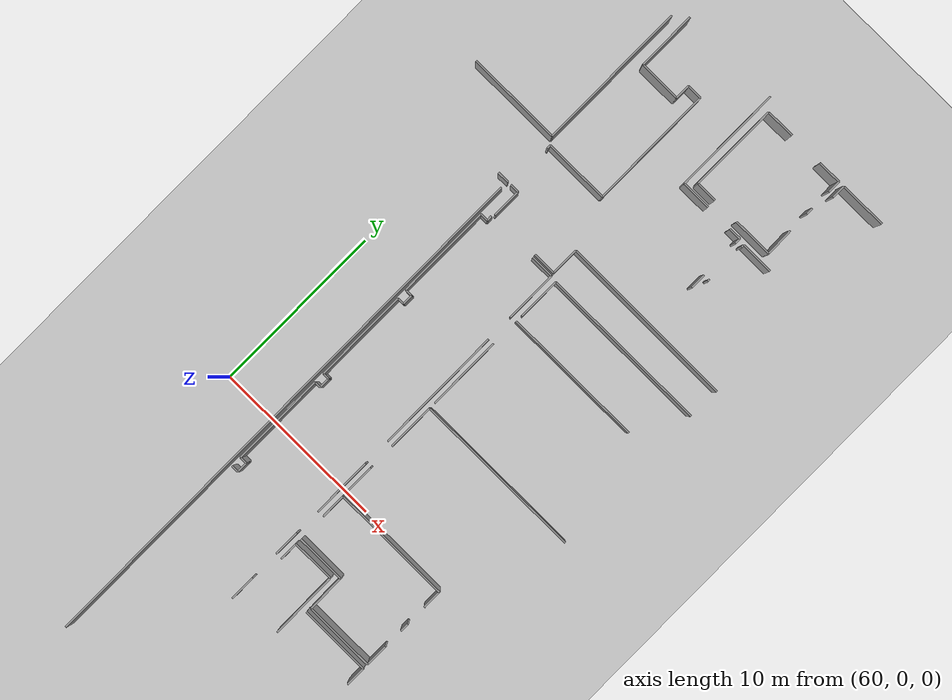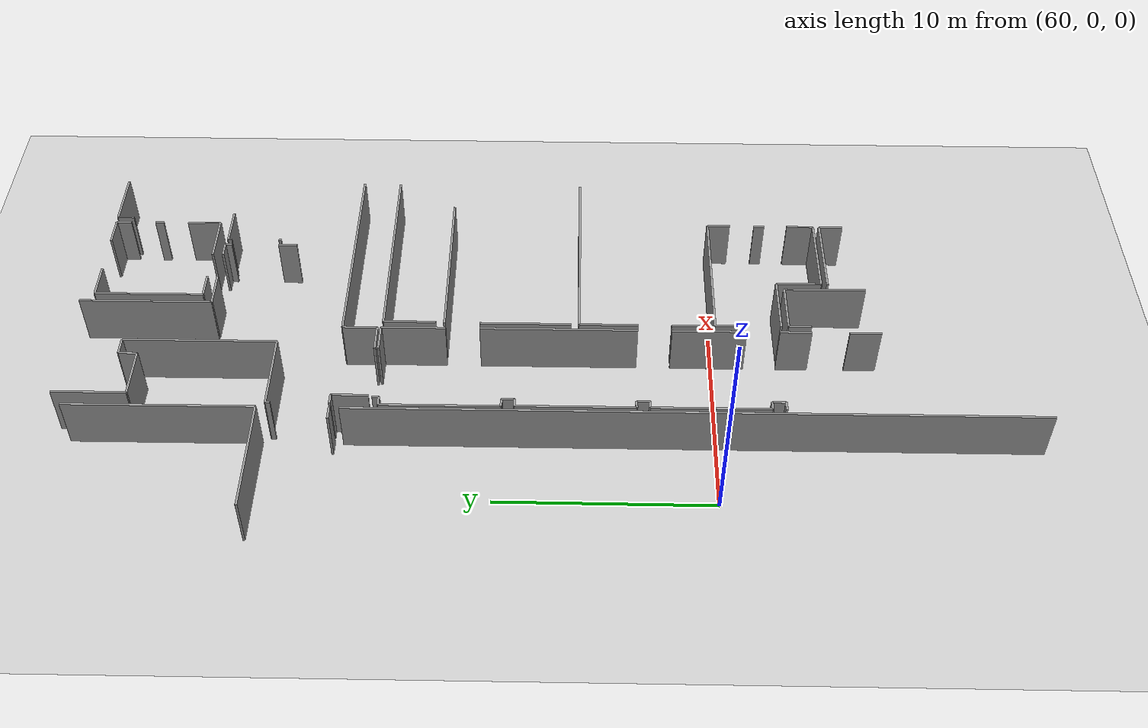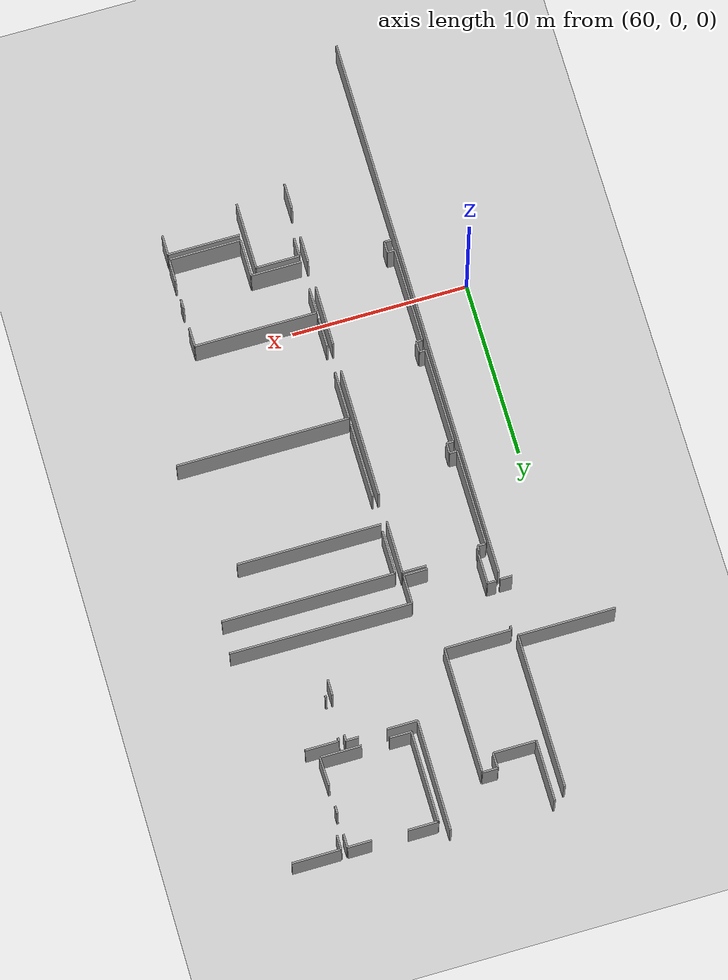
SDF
<sdf version="1.6">
 <world name="default">
  <model name="ground_plane">
   <static>1</static>
   <link name="link">
    <collision name="collision">
     <geometry><plane><normal>0 0 1</normal><size>100 100</size></plane></geometry>
     <surface><friction><ode><mu>100</mu><mu2>50</mu2></ode></friction></surface>
    </collision>
    <visual name="visual">
     <cast_shadows>0</cast_shadows>
     <geometry><plane><normal>0 0 1</normal><size>100 100</size></plane></geometry>
     <material>
      <script><uri>file://media/materials/scripts/gazebo.material</uri><name>Gazebo/Grey</name></script>
     </material>
    </visual>
   </link>
  </model>
  <model name="50010535_PLAN2">
   <static>1</static>
   <link name="Wall_178">
    <collision name="Wall_178_Collision">
     <geometry><box><size>0.682833236978 0.1 2.5</size></box></geometry>
     <pose>0.341416618489 0 1.25 0 0 0</pose>
    </collision>
    <visual name="Wall_178_Visual">
     <pose>0.341416618489 0 1.25 0 0 0</pose>
     <geometry><box><size>0.682833236978 0.1 2.5</size></box></geometry>
     <material>
      <script><uri>file://media/materials/scripts/gazebo.material</uri><name>Gazebo/Grey</name></script>
      <ambient>1 1 1 1</ambient>
     </material>
    </visual>
    <pose>165.866241431 -12.5499259862 0 0 0 3.14159265359</pose>
   </link>
   <link name="Wall_279">
    <collision name="Wall_279_Collision">
     <geometry><box><size>5.47816750634 0.1 2.5</size></box></geometry>
     <pose>2.73908375317 0 1.25 0 0 0</pose>
    </collision>
    <visual name="Wall_279_Visual">
     <pose>2.73908375317 0 1.25 0 0 0</pose>
     <geometry><box><size>5.47816750634 0.1 2.5</size></box></geometry>
     <material>
      <script><uri>file://media/materials/scripts/gazebo.material</uri><name>Gazebo/Grey</name></script>
      <ambient>1 1 1 1</ambient>
     </material>
    </visual>
    <pose>165.822531972 -9.28721815976 0 0 0 3.14159265359</pose>
   </link>
   <link name="Wall_288">
    <collision name="Wall_288_Collision">
     <geometry><box><size>8.69490667362 0.1 2.5</size></box></geometry>
     <pose>4.34745333681 0 1.25 0 0 0</pose>
    </collision>
    <visual name="Wall_288_Visual">
     <pose>4.34745333681 0 1.25 0 0 0</pose>
     <geometry><box><size>8.69490667362 0.1 2.5</size></box></geometry>
     <material>
      <script><uri>file://media/materials/scripts/gazebo.material</uri><name>Gazebo/Grey</name></script>
      <ambient>1 1 1 1</ambient>
     </material>
    </visual>
    <pose>165.815924728 -0.592313996557 0 0 0 -1.57003642853</pose>
   </link>
   <link name="Wall_359">
    <collision name="Wall_359_Collision">
     <geometry><box><size>31.5805924919 0.1 2.5</size></box></geometry>
     <pose>15.7902962459 0 1.25 0 0 0</pose>
    </collision>
    <visual name="Wall_359_Visual">
     <pose>15.7902962459 0 1.25 0 0 0</pose>
     <geometry><box><size>31.5805924919 0.1 2.5</size></box></geometry>
     <material>
      <script><uri>file://media/materials/scripts/gazebo.material</uri><name>Gazebo/Grey</name></script>
      <ambient>1 1 1 1</ambient>
     </material>
    </visual>
    <pose>165.815924728 -12.9755849634 0 0 0 -1.57079632679</pose>
   </link>
   <link name="Wall_364">
    <collision name="Wall_364_Collision">
     <geometry><box><size>0.904938279448 0.1 2.5</size></box></geometry>
     <pose>0.452469139724 0 1.25 0 0 0</pose>
    </collision>
    <visual name="Wall_364_Visual">
     <pose>0.452469139724 0 1.25 0 0 0</pose>
     <geometry><box><size>0.904938279448 0.1 2.5</size></box></geometry>
     <material>
      <script><uri>file://media/materials/scripts/gazebo.material</uri><name>Gazebo/Grey</name></script>
      <ambient>1 1 1 1</ambient>
     </material>
    </visual>
    <pose>176.328557906 -9.77793307624 0 0 0 1.57079632679</pose>
   </link>
   <link name="Wall_365">
    <collision name="Wall_365_Collision">
     <geometry><box><size>0.32959981703 0.1 2.5</size></box></geometry>
     <pose>0.164799908515 0 1.25 0 0 0</pose>
    </collision>
    <visual name="Wall_365_Visual">
     <pose>0.164799908515 0 1.25 0 0 0</pose>
     <geometry><box><size>0.32959981703 0.1 2.5</size></box></geometry>
     <material>
      <script><uri>file://media/materials/scripts/gazebo.material</uri><name>Gazebo/Grey</name></script>
      <ambient>1 1 1 1</ambient>
     </material>
    </visual>
    <pose>176.328557906 -6.5918946907 0 0 0 1.57079632679</pose>
   </link>
   <link name="Wall_366">
    <collision name="Wall_366_Collision">
     <geometry><box><size>0.707483338945 0.1 2.5</size></box></geometry>
     <pose>0.353741669473 0 1.25 0 0 0</pose>
    </collision>
    <visual name="Wall_366_Visual">
     <pose>0.353741669473 0 1.25 0 0 0</pose>
     <geometry><box><size>0.707483338945 0.1 2.5</size></box></geometry>
     <material>
      <script><uri>file://media/materials/scripts/gazebo.material</uri><name>Gazebo/Grey</name></script>
      <ambient>1 1 1 1</ambient>
     </material>
    </visual>
    <pose>176.328557906 -6.26229487367 0 0 0 3.14159265359</pose>
   </link>
   <link name="Wall_367">
    <collision name="Wall_367_Collision">
     <geometry><box><size>1.71457977294 0.1 2.5</size></box></geometry>
     <pose>0.85728988647 0 1.25 0 0 0</pose>
    </collision>
    <visual name="Wall_367_Visual">
     <pose>0.85728988647 0 1.25 0 0 0</pose>
     <geometry><box><size>1.71457977294 0.1 2.5</size></box></geometry>
     <material>
      <script><uri>file://media/materials/scripts/gazebo.material</uri><name>Gazebo/Grey</name></script>
      <ambient>1 1 1 1</ambient>
     </material>
    </visual>
    <pose>174.046517538 -6.26229487367 0 0 0 3.14159265359</pose>
   </link>
   <link name="Wall_368">
    <collision name="Wall_368_Collision">
     <geometry><box><size>6.26160873681 0.1 2.5</size></box></geometry>
     <pose>3.1308043684 0 1.25 0 0 0</pose>
    </collision>
    <visual name="Wall_368_Visual">
     <pose>3.1308043684 0 1.25 0 0 0</pose>
     <geometry><box><size>6.26160873681 0.1 2.5</size></box></geometry>
     <material>
      <script><uri>file://media/materials/scripts/gazebo.material</uri><name>Gazebo/Grey</name></script>
      <ambient>1 1 1 1</ambient>
     </material>
    </visual>
    <pose>172.331937765 -6.26229487367 0 0 0 1.57079632679</pose>
   </link>
   <link name="Wall_369">
    <collision name="Wall_369_Collision">
     <geometry><box><size>3.4144711346 0.1 2.5</size></box></geometry>
     <pose>1.7072355673 0 1.25 0 0 0</pose>
    </collision>
    <visual name="Wall_369_Visual">
     <pose>1.7072355673 0 1.25 0 0 0</pose>
     <geometry><box><size>3.4144711346 0.1 2.5</size></box></geometry>
     <material>
      <script><uri>file://media/materials/scripts/gazebo.material</uri><name>Gazebo/Grey</name></script>
      <ambient>1 1 1 1</ambient>
     </material>
    </visual>
    <pose>166.549074668 -0.000686136858892 0 0 0 -1.57079632679</pose>
   </link>
   <link name="Wall_370">
    <collision name="Wall_370_Collision">
     <geometry><box><size>2.41189812138 0.1 2.5</size></box></geometry>
     <pose>1.20594906069 0 1.25 0 0 0</pose>
    </collision>
    <visual name="Wall_370_Visual">
     <pose>1.20594906069 0 1.25 0 0 0</pose>
     <geometry><box><size>2.41189812138 0.1 2.5</size></box></geometry>
     <material>
      <script><uri>file://media/materials/scripts/gazebo.material</uri><name>Gazebo/Grey</name></script>
      <ambient>1 1 1 1</ambient>
     </material>
    </visual>
    <pose>166.549074668 -3.41515727146 0 0 0 0.0</pose>
   </link>
   <link name="Wall_371">
    <collision name="Wall_371_Collision">
     <geometry><box><size>0.857264473994 0.1 2.5</size></box></geometry>
     <pose>0.428632236997 0 1.25 0 0 0</pose>
    </collision>
    <visual name="Wall_371_Visual">
     <pose>0.428632236997 0 1.25 0 0 0</pose>
     <geometry><box><size>0.857264473994 0.1 2.5</size></box></geometry>
     <material>
      <script><uri>file://media/materials/scripts/gazebo.material</uri><name>Gazebo/Grey</name></script>
      <ambient>1 1 1 1</ambient>
     </material>
    </visual>
    <pose>168.96097279 -3.41515727146 0 0 0 1.57079632679</pose>
   </link>
   <link name="Wall_372">
    <collision name="Wall_372_Collision">
     <geometry><box><size>0.857416948851 0.1 2.5</size></box></geometry>
     <pose>0.428708474426 0 1.25 0 0 0</pose>
    </collision>
    <visual name="Wall_372_Visual">
     <pose>0.428708474426 0 1.25 0 0 0</pose>
     <geometry><box><size>0.857416948851 0.1 2.5</size></box></geometry>
     <material>
      <script><uri>file://media/materials/scripts/gazebo.material</uri><name>Gazebo/Grey</name></script>
      <ambient>1 1 1 1</ambient>
     </material>
    </visual>
    <pose>168.96097279 -2.55789279747 0 0 0 0.0</pose>
   </link>
   <link name="Wall_373">
    <collision name="Wall_373_Collision">
     <geometry><box><size>7.13033423759 0.1 2.5</size></box></geometry>
     <pose>3.5651671188 0 1.25 0 0 0</pose>
    </collision>
    <visual name="Wall_373_Visual">
     <pose>3.5651671188 0 1.25 0 0 0</pose>
     <geometry><box><size>7.13033423759 0.1 2.5</size></box></geometry>
     <material>
      <script><uri>file://media/materials/scripts/gazebo.material</uri><name>Gazebo/Grey</name></script>
      <ambient>1 1 1 1</ambient>
     </material>
    </visual>
    <pose>169.818389738 -2.55789279747 0 0 0 -1.57079632679</pose>
   </link>
   <link name="Wall_374">
    <collision name="Wall_374_Collision">
     <geometry><box><size>3.74452837621 0.1 2.5</size></box></geometry>
     <pose>1.8722641881 0 1.25 0 0 0</pose>
    </collision>
    <visual name="Wall_374_Visual">
     <pose>1.8722641881 0 1.25 0 0 0</pose>
     <geometry><box><size>3.74452837621 0.1 2.5</size></box></geometry>
     <material>
      <script><uri>file://media/materials/scripts/gazebo.material</uri><name>Gazebo/Grey</name></script>
      <ambient>1 1 1 1</ambient>
     </material>
    </visual>
    <pose>169.818389738 -9.68822703506 0 0 0 3.14159265359</pose>
   </link>
   <link name="Wall_375">
    <collision name="Wall_375_Collision">
     <geometry><box><size>0.210669428156 0.1 2.5</size></box></geometry>
     <pose>0.105334714078 0 1.25 0 0 0</pose>
    </collision>
    <visual name="Wall_375_Visual">
     <pose>0.105334714078 0 1.25 0 0 0</pose>
     <geometry><box><size>0.210669428156 0.1 2.5</size></box></geometry>
     <material>
      <script><uri>file://media/materials/scripts/gazebo.material</uri><name>Gazebo/Grey</name></script>
      <ambient>1 1 1 1</ambient>
     </material>
    </visual>
    <pose>166.073861362 -9.68822703506 0 0 0 -1.57079632679</pose>
   </link>
   <link name="Wall_376">
    <collision name="Wall_376_Collision">
     <geometry><box><size>0.501388156515 0.1 2.5</size></box></geometry>
     <pose>0.250694078258 0 1.25 0 0 0</pose>
    </collision>
    <visual name="Wall_376_Visual">
     <pose>0.250694078258 0 1.25 0 0 0</pose>
     <geometry><box><size>0.501388156515 0.1 2.5</size></box></geometry>
     <material>
      <script><uri>file://media/materials/scripts/gazebo.material</uri><name>Gazebo/Grey</name></script>
      <ambient>1 1 1 1</ambient>
     </material>
    </visual>
    <pose>166.073861362 -12.5341702509 0 0 0 0.0</pose>
   </link>
   <link name="Wall_377">
    <collision name="Wall_377_Collision">
     <geometry><box><size>1.68154355381 0.1 2.5</size></box></geometry>
     <pose>0.840771776904 0 1.25 0 0 0</pose>
    </collision>
    <visual name="Wall_377_Visual">
     <pose>0.840771776904 0 1.25 0 0 0</pose>
     <geometry><box><size>1.68154355381 0.1 2.5</size></box></geometry>
     <material>
      <script><uri>file://media/materials/scripts/gazebo.material</uri><name>Gazebo/Grey</name></script>
      <ambient>1 1 1 1</ambient>
     </material>
    </visual>
    <pose>166.575249519 -12.5341702509 0 0 0 -1.57079632679</pose>
   </link>
   <link name="Wall_378">
    <collision name="Wall_378_Collision">
     <geometry><box><size>1.33669625102 0.1 2.5</size></box></geometry>
     <pose>0.668348125512 0 1.25 0 0 0</pose>
    </collision>
    <visual name="Wall_378_Visual">
     <pose>0.668348125512 0 1.25 0 0 0</pose>
     <geometry><box><size>1.33669625102 0.1 2.5</size></box></geometry>
     <material>
      <script><uri>file://media/materials/scripts/gazebo.material</uri><name>Gazebo/Grey</name></script>
      <ambient>1 1 1 1</ambient>
     </material>
    </visual>
    <pose>169.454991328 -14.2157138047 0 0 0 0.0</pose>
   </link>
   <link name="Wall_379">
    <collision name="Wall_379_Collision">
     <geometry><box><size>1.61521699078 0.1 2.5</size></box></geometry>
     <pose>0.807608495391 0 1.25 0 0 0</pose>
    </collision>
    <visual name="Wall_379_Visual">
     <pose>0.807608495391 0 1.25 0 0 0</pose>
     <geometry><box><size>1.61521699078 0.1 2.5</size></box></geometry>
     <material>
      <script><uri>file://media/materials/scripts/gazebo.material</uri><name>Gazebo/Grey</name></script>
      <ambient>1 1 1 1</ambient>
     </material>
    </visual>
    <pose>170.791687579 -14.2157138047 0 0 0 1.57079632679</pose>
   </link>
   <link name="Wall_380">
    <collision name="Wall_380_Collision">
     <geometry><box><size>10.1998876528 0.1 2.5</size></box></geometry>
     <pose>5.09994382639 0 1.25 0 0 0</pose>
    </collision>
    <visual name="Wall_380_Visual">
     <pose>5.09994382639 0 1.25 0 0 0</pose>
     <geometry><box><size>10.1998876528 0.1 2.5</size></box></geometry>
     <material>
      <script><uri>file://media/materials/scripts/gazebo.material</uri><name>Gazebo/Grey</name></script>
      <ambient>1 1 1 1</ambient>
     </material>
    </visual>
    <pose>170.791687579 -12.6004968139 0 0 0 -0.00401123991579</pose>
   </link>
   <link name="Wall_382">
    <collision name="Wall_382_Collision">
     <geometry><box><size>0.130874252714 0.1 2.5</size></box></geometry>
     <pose>0.0654371263572 0 1.25 0 0 0</pose>
    </collision>
    <visual name="Wall_382_Visual">
     <pose>0.0654371263572 0 1.25 0 0 0</pose>
     <geometry><box><size>0.130874252714 0.1 2.5</size></box></geometry>
     <material>
      <script><uri>file://media/materials/scripts/gazebo.material</uri><name>Gazebo/Grey</name></script>
      <ambient>1 1 1 1</ambient>
     </material>
    </visual>
    <pose>176.690939817 -8.96549621036 0 0 0 1.57079632679</pose>
   </link>
   <link name="Wall_383">
    <collision name="Wall_383_Collision">
     <geometry><box><size>0.172931900917 0.1 2.5</size></box></geometry>
     <pose>0.0864659504584 0 1.25 0 0 0</pose>
    </collision>
    <visual name="Wall_383_Visual">
     <pose>0.0864659504584 0 1.25 0 0 0</pose>
     <geometry><box><size>0.172931900917 0.1 2.5</size></box></geometry>
     <material>
      <script><uri>file://media/materials/scripts/gazebo.material</uri><name>Gazebo/Grey</name></script>
      <ambient>1 1 1 1</ambient>
     </material>
    </visual>
    <pose>176.690939817 -6.5286430373 0 0 0 1.57079632679</pose>
   </link>
   <link name="Wall_384">
    <collision name="Wall_384_Collision">
     <geometry><box><size>1.8858598629 0.1 2.5</size></box></geometry>
     <pose>0.94292993145 0 1.25 0 0 0</pose>
    </collision>
    <visual name="Wall_384_Visual">
     <pose>0.94292993145 0 1.25 0 0 0</pose>
     <geometry><box><size>1.8858598629 0.1 2.5</size></box></geometry>
     <material>
      <script><uri>file://media/materials/scripts/gazebo.material</uri><name>Gazebo/Grey</name></script>
      <ambient>1 1 1 1</ambient>
     </material>
    </visual>
    <pose>176.690939817 -6.35571113638 0 0 0 0.0</pose>
   </link>
   <link name="Wall_386">
    <collision name="Wall_386_Collision">
     <geometry><box><size>2.3120270897 0.1 2.5</size></box></geometry>
     <pose>1.15601354485 0 1.25 0 0 0</pose>
    </collision>
    <visual name="Wall_386_Visual">
     <pose>1.15601354485 0 1.25 0 0 0</pose>
     <geometry><box><size>2.3120270897 0.1 2.5</size></box></geometry>
     <material>
      <script><uri>file://media/materials/scripts/gazebo.material</uri><name>Gazebo/Grey</name></script>
      <ambient>1 1 1 1</ambient>
     </material>
    </visual>
    <pose>177.911246927 -5.76896247213 0 0 0 3.14159265359</pose>
   </link>
   <link name="Wall_387">
    <collision name="Wall_387_Collision">
     <geometry><box><size>1.21979886025 0.1 2.5</size></box></geometry>
     <pose>0.609899430125 0 1.25 0 0 0</pose>
    </collision>
    <visual name="Wall_387_Visual">
     <pose>0.609899430125 0 1.25 0 0 0</pose>
     <geometry><box><size>1.21979886025 0.1 2.5</size></box></geometry>
     <material>
      <script><uri>file://media/materials/scripts/gazebo.material</uri><name>Gazebo/Grey</name></script>
      <ambient>1 1 1 1</ambient>
     </material>
    </visual>
    <pose>174.043468041 -5.76896247213 0 0 0 3.14159265359</pose>
   </link>
   <link name="Wall_388">
    <collision name="Wall_388_Collision">
     <geometry><box><size>5.13697960013 0.1 2.5</size></box></geometry>
     <pose>2.56848980007 0 1.25 0 0 0</pose>
    </collision>
    <visual name="Wall_388_Visual">
     <pose>2.56848980007 0 1.25 0 0 0</pose>
     <geometry><box><size>5.13697960013 0.1 2.5</size></box></geometry>
     <material>
      <script><uri>file://media/materials/scripts/gazebo.material</uri><name>Gazebo/Grey</name></script>
      <ambient>1 1 1 1</ambient>
     </material>
    </visual>
    <pose>172.82366918 -5.76896247213 0 0 0 1.57079632679</pose>
   </link>
   <link name="Wall_389">
    <collision name="Wall_389_Collision">
     <geometry><box><size>1.68764254811 0.1 2.5</size></box></geometry>
     <pose>0.843821274054 0 1.25 0 0 0</pose>
    </collision>
    <visual name="Wall_389_Visual">
     <pose>0.843821274054 0 1.25 0 0 0</pose>
     <geometry><box><size>1.68764254811 0.1 2.5</size></box></geometry>
     <material>
      <script><uri>file://media/materials/scripts/gazebo.material</uri><name>Gazebo/Grey</name></script>
      <ambient>1 1 1 1</ambient>
     </material>
    </visual>
    <pose>172.82366918 -0.631982871991 0 0 0 0.0</pose>
   </link>
   <link name="Wall_390">
    <collision name="Wall_390_Collision">
     <geometry><box><size>1.35194373678 0.1 2.5</size></box></geometry>
     <pose>0.675971868389 0 1.25 0 0 0</pose>
    </collision>
    <visual name="Wall_390_Visual">
     <pose>0.675971868389 0 1.25 0 0 0</pose>
     <geometry><box><size>1.35194373678 0.1 2.5</size></box></geometry>
     <material>
      <script><uri>file://media/materials/scripts/gazebo.material</uri><name>Gazebo/Grey</name></script>
      <ambient>1 1 1 1</ambient>
     </material>
    </visual>
    <pose>176.516356105 -0.631982871991 0 0 0 0.0</pose>
   </link>
   <link name="Wall_391">
    <collision name="Wall_391_Collision">
     <geometry><box><size>0.736377324447 0.1 2.5</size></box></geometry>
     <pose>0.368188662224 0 1.25 0 0 0</pose>
    </collision>
    <visual name="Wall_391_Visual">
     <pose>0.368188662224 0 1.25 0 0 0</pose>
     <geometry><box><size>0.736377324447 0.1 2.5</size></box></geometry>
     <material>
      <script><uri>file://media/materials/scripts/gazebo.material</uri><name>Gazebo/Grey</name></script>
      <ambient>1 1 1 1</ambient>
     </material>
    </visual>
    <pose>177.868299842 -0.631982871991 0 0 0 -1.57079632679</pose>
   </link>
   <link name="Wall_392">
    <collision name="Wall_392_Collision">
     <geometry><box><size>0.416942497919 0.1 2.5</size></box></geometry>
     <pose>0.20847124896 0 1.25 0 0 0</pose>
    </collision>
    <visual name="Wall_392_Visual">
     <pose>0.20847124896 0 1.25 0 0 0</pose>
     <geometry><box><size>0.416942497919 0.1 2.5</size></box></geometry>
     <material>
      <script><uri>file://media/materials/scripts/gazebo.material</uri><name>Gazebo/Grey</name></script>
      <ambient>1 1 1 1</ambient>
     </material>
    </visual>
    <pose>177.868299842 -2.55601227423 0 0 0 -1.57079632679</pose>
   </link>
   <link name="Wall_393">
    <collision name="Wall_393_Collision">
     <geometry><box><size>1.59632885538 0.1 2.5</size></box></geometry>
     <pose>0.79816442769 0 1.25 0 0 0</pose>
    </collision>
    <visual name="Wall_393_Visual">
     <pose>0.79816442769 0 1.25 0 0 0</pose>
     <geometry><box><size>1.59632885538 0.1 2.5</size></box></geometry>
     <material>
      <script><uri>file://media/materials/scripts/gazebo.material</uri><name>Gazebo/Grey</name></script>
      <ambient>1 1 1 1</ambient>
     </material>
    </visual>
    <pose>177.868299842 -4.17321143816 0 0 0 -1.54388942267</pose>
   </link>
   <link name="Wall_399">
    <collision name="Wall_399_Collision">
     <geometry><box><size>0.795969581266 0.1 2.5</size></box></geometry>
     <pose>0.397984790633 0 1.25 0 0 0</pose>
    </collision>
    <visual name="Wall_399_Visual">
     <pose>0.397984790633 0 1.25 0 0 0</pose>
     <geometry><box><size>0.795969581266 0.1 2.5</size></box></geometry>
     <material>
      <script><uri>file://media/materials/scripts/gazebo.material</uri><name>Gazebo/Grey</name></script>
      <ambient>1 1 1 1</ambient>
     </material>
    </visual>
    <pose>178.220770887 -1.41890561171 0 0 0 1.57079632679</pose>
   </link>
   <link name="Wall_400">
    <collision name="Wall_400_Collision">
     <geometry><box><size>2.73031644886 0.1 2.5</size></box></geometry>
     <pose>1.36515822443 0 1.25 0 0 0</pose>
    </collision>
    <visual name="Wall_400_Visual">
     <pose>1.36515822443 0 1.25 0 0 0</pose>
     <geometry><box><size>2.73031644886 0.1 2.5</size></box></geometry>
     <material>
      <script><uri>file://media/materials/scripts/gazebo.material</uri><name>Gazebo/Grey</name></script>
      <ambient>1 1 1 1</ambient>
     </material>
    </visual>
    <pose>178.220770887 -0.622936030444 0 0 0 0.0</pose>
   </link>
   <link name="Wall_451">
    <collision name="Wall_451_Collision">
     <geometry><box><size>0.421338856312 0.1 2.5</size></box></geometry>
     <pose>0.210669428156 0 1.25 0 0 0</pose>
    </collision>
    <visual name="Wall_451_Visual">
     <pose>0.210669428156 0 1.25 0 0 0</pose>
     <geometry><box><size>0.421338856312 0.1 2.5</size></box></geometry>
     <material>
      <script><uri>file://media/materials/scripts/gazebo.material</uri><name>Gazebo/Grey</name></script>
      <ambient>1 1 1 1</ambient>
     </material>
    </visual>
    <pose>166.05505613 -32.7650425977 0 0 0 0.0</pose>
   </link>
   <link name="Wall_452">
    <collision name="Wall_452_Collision">
     <geometry><box><size>0.624638666353 0.1 2.5</size></box></geometry>
     <pose>0.312319333177 0 1.25 0 0 0</pose>
    </collision>
    <visual name="Wall_452_Visual">
     <pose>0.312319333177 0 1.25 0 0 0</pose>
     <geometry><box><size>0.624638666353 0.1 2.5</size></box></geometry>
     <material>
      <script><uri>file://media/materials/scripts/gazebo.material</uri><name>Gazebo/Grey</name></script>
      <ambient>1 1 1 1</ambient>
     </material>
    </visual>
    <pose>166.476394986 -32.7650425977 0 0 0 1.57079632679</pose>
   </link>
   <link name="Wall_453">
    <collision name="Wall_453_Collision">
     <geometry><box><size>0.41219036486 0.1 2.5</size></box></geometry>
     <pose>0.20609518243 0 1.25 0 0 0</pose>
    </collision>
    <visual name="Wall_453_Visual">
     <pose>0.20609518243 0 1.25 0 0 0</pose>
     <geometry><box><size>0.41219036486 0.1 2.5</size></box></geometry>
     <material>
      <script><uri>file://media/materials/scripts/gazebo.material</uri><name>Gazebo/Grey</name></script>
      <ambient>1 1 1 1</ambient>
     </material>
    </visual>
    <pose>166.476394986 -32.1404039313 0 0 0 3.14159265359</pose>
   </link>
   <link name="Wall_454">
    <collision name="Wall_454_Collision">
     <geometry><box><size>5.40015120423 0.1 2.5</size></box></geometry>
     <pose>2.70007560212 0 1.25 0 0 0</pose>
    </collision>
    <visual name="Wall_454_Visual">
     <pose>2.70007560212 0 1.25 0 0 0</pose>
     <geometry><box><size>5.40015120423 0.1 2.5</size></box></geometry>
     <material>
      <script><uri>file://media/materials/scripts/gazebo.material</uri><name>Gazebo/Grey</name></script>
      <ambient>1 1 1 1</ambient>
     </material>
    </visual>
    <pose>166.064204621 -32.1404039313 0 0 0 1.57079632679</pose>
   </link>
   <link name="Wall_455">
    <collision name="Wall_455_Collision">
     <geometry><box><size>0.35348754471 0.1 2.5</size></box></geometry>
     <pose>0.176743772355 0 1.25 0 0 0</pose>
    </collision>
    <visual name="Wall_455_Visual">
     <pose>0.176743772355 0 1.25 0 0 0</pose>
     <geometry><box><size>0.35348754471 0.1 2.5</size></box></geometry>
     <material>
      <script><uri>file://media/materials/scripts/gazebo.material</uri><name>Gazebo/Grey</name></script>
      <ambient>1 1 1 1</ambient>
     </material>
    </visual>
    <pose>166.064204621 -26.7402527271 0 0 0 0.0</pose>
   </link>
   <link name="Wall_456">
    <collision name="Wall_456_Collision">
     <geometry><box><size>0.602021562486 0.1 2.5</size></box></geometry>
     <pose>0.301010781243 0 1.25 0 0 0</pose>
    </collision>
    <visual name="Wall_456_Visual">
     <pose>0.301010781243 0 1.25 0 0 0</pose>
     <geometry><box><size>0.602021562486 0.1 2.5</size></box></geometry>
     <material>
      <script><uri>file://media/materials/scripts/gazebo.material</uri><name>Gazebo/Grey</name></script>
      <ambient>1 1 1 1</ambient>
     </material>
    </visual>
    <pose>166.417692166 -26.7402527271 0 0 0 1.57079632679</pose>
   </link>
   <link name="Wall_457">
    <collision name="Wall_457_Collision">
     <geometry><box><size>0.362890160925 0.1 2.5</size></box></geometry>
     <pose>0.181445080462 0 1.25 0 0 0</pose>
    </collision>
    <visual name="Wall_457_Visual">
     <pose>0.181445080462 0 1.25 0 0 0</pose>
     <geometry><box><size>0.362890160925 0.1 2.5</size></box></geometry>
     <material>
      <script><uri>file://media/materials/scripts/gazebo.material</uri><name>Gazebo/Grey</name></script>
      <ambient>1 1 1 1</ambient>
     </material>
    </visual>
    <pose>166.417692166 -26.1382311646 0 0 0 3.14159265359</pose>
   </link>
   <link name="Wall_458">
    <collision name="Wall_458_Collision">
     <geometry><box><size>5.41819406237 0.1 2.5</size></box></geometry>
     <pose>2.70909703119 0 1.25 0 0 0</pose>
    </collision>
    <visual name="Wall_458_Visual">
     <pose>2.70909703119 0 1.25 0 0 0</pose>
     <geometry><box><size>5.41819406237 0.1 2.5</size></box></geometry>
     <material>
      <script><uri>file://media/materials/scripts/gazebo.material</uri><name>Gazebo/Grey</name></script>
      <ambient>1 1 1 1</ambient>
     </material>
    </visual>
    <pose>166.054802005 -26.1382311646 0 0 0 1.57079632679</pose>
   </link>
   <link name="Wall_459">
    <collision name="Wall_459_Collision">
     <geometry><box><size>0.407107869609 0.1 2.5</size></box></geometry>
     <pose>0.203553934804 0 1.25 0 0 0</pose>
    </collision>
    <visual name="Wall_459_Visual">
     <pose>0.203553934804 0 1.25 0 0 0</pose>
     <geometry><box><size>0.407107869609 0.1 2.5</size></box></geometry>
     <material>
      <script><uri>file://media/materials/scripts/gazebo.material</uri><name>Gazebo/Grey</name></script>
      <ambient>1 1 1 1</ambient>
     </material>
    </visual>
    <pose>166.054802005 -20.7200371022 0 0 0 0.0</pose>
   </link>
   <link name="Wall_460">
    <collision name="Wall_460_Collision">
     <geometry><box><size>0.581183331957 0.1 2.5</size></box></geometry>
     <pose>0.290591665978 0 1.25 0 0 0</pose>
    </collision>
    <visual name="Wall_460_Visual">
     <pose>0.290591665978 0 1.25 0 0 0</pose>
     <geometry><box><size>0.581183331957 0.1 2.5</size></box></geometry>
     <material>
      <script><uri>file://media/materials/scripts/gazebo.material</uri><name>Gazebo/Grey</name></script>
      <ambient>1 1 1 1</ambient>
     </material>
    </visual>
    <pose>166.461909875 -20.7200371022 0 0 0 1.57079632679</pose>
   </link>
   <link name="Wall_461">
    <collision name="Wall_461_Collision">
     <geometry><box><size>0.435823967777 0.1 2.5</size></box></geometry>
     <pose>0.217911983888 0 1.25 0 0 0</pose>
    </collision>
    <visual name="Wall_461_Visual">
     <pose>0.217911983888 0 1.25 0 0 0</pose>
     <geometry><box><size>0.435823967777 0.1 2.5</size></box></geometry>
     <material>
      <script><uri>file://media/materials/scripts/gazebo.material</uri><name>Gazebo/Grey</name></script>
      <ambient>1 1 1 1</ambient>
     </material>
    </visual>
    <pose>166.461909875 -20.1388537703 0 0 0 3.14159265359</pose>
   </link>
   <link name="Wall_462">
    <collision name="Wall_462_Collision">
     <geometry><box><size>5.45148440627 0.1 2.5</size></box></geometry>
     <pose>2.72574220313 0 1.25 0 0 0</pose>
    </collision>
    <visual name="Wall_462_Visual">
     <pose>2.72574220313 0 1.25 0 0 0</pose>
     <geometry><box><size>5.45148440627 0.1 2.5</size></box></geometry>
     <material>
      <script><uri>file://media/materials/scripts/gazebo.material</uri><name>Gazebo/Grey</name></script>
      <ambient>1 1 1 1</ambient>
     </material>
    </visual>
    <pose>166.026085907 -20.1388537703 0 0 0 1.57079632679</pose>
   </link>
   <link name="Wall_463">
    <collision name="Wall_463_Collision">
     <geometry><box><size>0.465810689758 0.1 2.5</size></box></geometry>
     <pose>0.232905344879 0 1.25 0 0 0</pose>
    </collision>
    <visual name="Wall_463_Visual">
     <pose>0.232905344879 0 1.25 0 0 0</pose>
     <geometry><box><size>0.465810689758 0.1 2.5</size></box></geometry>
     <material>
      <script><uri>file://media/materials/scripts/gazebo.material</uri><name>Gazebo/Grey</name></script>
      <ambient>1 1 1 1</ambient>
     </material>
    </visual>
    <pose>166.026085907 -14.687369364 0 0 0 0.0</pose>
   </link>
   <link name="Wall_464">
    <collision name="Wall_464_Collision">
     <geometry><box><size>0.303424966487 0.1 2.5</size></box></geometry>
     <pose>0.151712483244 0 1.25 0 0 0</pose>
    </collision>
    <visual name="Wall_464_Visual">
     <pose>0.151712483244 0 1.25 0 0 0</pose>
     <geometry><box><size>0.303424966487 0.1 2.5</size></box></geometry>
     <material>
      <script><uri>file://media/materials/scripts/gazebo.material</uri><name>Gazebo/Grey</name></script>
      <ambient>1 1 1 1</ambient>
     </material>
    </visual>
    <pose>166.491896597 -14.687369364 0 0 0 1.57079632679</pose>
   </link>
   <link name="Wall_465">
    <collision name="Wall_465_Collision">
     <geometry><box><size>1.33923749865 0.1 2.5</size></box></geometry>
     <pose>0.669618749325 0 1.25 0 0 0</pose>
    </collision>
    <visual name="Wall_465_Visual">
     <pose>0.669618749325 0 1.25 0 0 0</pose>
     <geometry><box><size>1.33923749865 0.1 2.5</size></box></geometry>
     <material>
      <script><uri>file://media/materials/scripts/gazebo.material</uri><name>Gazebo/Grey</name></script>
      <ambient>1 1 1 1</ambient>
     </material>
    </visual>
    <pose>169.47913318 -14.3839443975 0 0 0 0.0</pose>
   </link>
   <link name="Wall_466">
    <collision name="Wall_466_Collision">
     <geometry><box><size>2.99231907905 0.1 2.5</size></box></geometry>
     <pose>1.49615953953 0 1.25 0 0 0</pose>
    </collision>
    <visual name="Wall_466_Visual">
     <pose>1.49615953953 0 1.25 0 0 0</pose>
     <geometry><box><size>2.99231907905 0.1 2.5</size></box></geometry>
     <material>
      <script><uri>file://media/materials/scripts/gazebo.material</uri><name>Gazebo/Grey</name></script>
      <ambient>1 1 1 1</ambient>
     </material>
    </visual>
    <pose>170.818370679 -14.3839443975 0 0 0 -1.57079632679</pose>
   </link>
   <link name="Wall_467">
    <collision name="Wall_467_Collision">
     <geometry><box><size>7.3248921558 0.1 2.5</size></box></geometry>
     <pose>3.6624460779 0 1.25 0 0 0</pose>
    </collision>
    <visual name="Wall_467_Visual">
     <pose>3.6624460779 0 1.25 0 0 0</pose>
     <geometry><box><size>7.3248921558 0.1 2.5</size></box></geometry>
     <material>
      <script><uri>file://media/materials/scripts/gazebo.material</uri><name>Gazebo/Grey</name></script>
      <ambient>1 1 1 1</ambient>
     </material>
    </visual>
    <pose>170.818370679 -18.9620019949 0 0 0 -1.57079632679</pose>
   </link>
   <link name="Wall_468">
    <collision name="Wall_468_Collision">
     <geometry><box><size>3.4588921431 0.1 2.5</size></box></geometry>
     <pose>1.72944607155 0 1.25 0 0 0</pose>
    </collision>
    <visual name="Wall_468_Visual">
     <pose>1.72944607155 0 1.25 0 0 0</pose>
     <geometry><box><size>3.4588921431 0.1 2.5</size></box></geometry>
     <material>
      <script><uri>file://media/materials/scripts/gazebo.material</uri><name>Gazebo/Grey</name></script>
      <ambient>1 1 1 1</ambient>
     </material>
    </visual>
    <pose>170.818370679 -27.8678042985 0 0 0 -1.57079632679</pose>
   </link>
   <link name="Wall_469">
    <collision name="Wall_469_Collision">
     <geometry><box><size>1.48713811046 0.1 2.5</size></box></geometry>
     <pose>0.743569055228 0 1.25 0 0 0</pose>
    </collision>
    <visual name="Wall_469_Visual">
     <pose>0.743569055228 0 1.25 0 0 0</pose>
     <geometry><box><size>1.48713811046 0.1 2.5</size></box></geometry>
     <material>
      <script><uri>file://media/materials/scripts/gazebo.material</uri><name>Gazebo/Grey</name></script>
      <ambient>1 1 1 1</ambient>
     </material>
    </visual>
    <pose>170.818370679 -32.847124896 0 0 0 -1.57079632679</pose>
   </link>
   <link name="Wall_470">
    <collision name="Wall_470_Collision">
     <geometry><box><size>1.47036587613 0.1 2.5</size></box></geometry>
     <pose>0.735182938063 0 1.25 0 0 0</pose>
    </collision>
    <visual name="Wall_470_Visual">
     <pose>0.735182938063 0 1.25 0 0 0</pose>
     <geometry><box><size>1.47036587613 0.1 2.5</size></box></geometry>
     <material>
      <script><uri>file://media/materials/scripts/gazebo.material</uri><name>Gazebo/Grey</name></script>
      <ambient>1 1 1 1</ambient>
     </material>
    </visual>
    <pose>170.818370679 -36.0719681328 0 0 0 -1.57079632679</pose>
   </link>
   <link name="Wall_473">
    <collision name="Wall_473_Collision">
     <geometry><box><size>4.26243464229 0.1 2.5</size></box></geometry>
     <pose>2.13121732114 0 1.25 0 0 0</pose>
    </collision>
    <visual name="Wall_473_Visual">
     <pose>2.13121732114 0 1.25 0 0 0</pose>
     <geometry><box><size>4.26243464229 0.1 2.5</size></box></geometry>
     <material>
      <script><uri>file://media/materials/scripts/gazebo.material</uri><name>Gazebo/Grey</name></script>
      <ambient>1 1 1 1</ambient>
     </material>
    </visual>
    <pose>171.152798867 -23.2076644028 0 0 0 1.57079632679</pose>
   </link>
   <link name="Wall_474">
    <collision name="Wall_474_Collision">
     <geometry><box><size>8.10988354733 0.1 2.5</size></box></geometry>
     <pose>4.05494177366 0 1.25 0 0 0</pose>
    </collision>
    <visual name="Wall_474_Visual">
     <pose>4.05494177366 0 1.25 0 0 0</pose>
     <geometry><box><size>8.10988354733 0.1 2.5</size></box></geometry>
     <material>
      <script><uri>file://media/materials/scripts/gazebo.material</uri><name>Gazebo/Grey</name></script>
      <ambient>1 1 1 1</ambient>
     </material>
    </visual>
    <pose>171.152798867 -17.3076497907 0 0 0 0.0</pose>
   </link>
   <link name="Wall_477">
    <collision name="Wall_477_Collision">
     <geometry><box><size>2.44849208719 0.1 2.5</size></box></geometry>
     <pose>1.2242460436 0 1.25 0 0 0</pose>
    </collision>
    <visual name="Wall_477_Visual">
     <pose>1.2242460436 0 1.25 0 0 0</pose>
     <geometry><box><size>2.44849208719 0.1 2.5</size></box></geometry>
     <material>
      <script><uri>file://media/materials/scripts/gazebo.material</uri><name>Gazebo/Grey</name></script>
      <ambient>1 1 1 1</ambient>
     </material>
    </visual>
    <pose>171.198033074 -16.9132481592 0 0 0 1.57079632679</pose>
   </link>
   <link name="Wall_478">
    <collision name="Wall_478_Collision">
     <geometry><box><size>9.71518967237 0.1 2.5</size></box></geometry>
     <pose>4.85759483618 0 1.25 0 0 0</pose>
    </collision>
    <visual name="Wall_478_Visual">
     <pose>4.85759483618 0 1.25 0 0 0</pose>
     <geometry><box><size>9.71518967237 0.1 2.5</size></box></geometry>
     <material>
      <script><uri>file://media/materials/scripts/gazebo.material</uri><name>Gazebo/Grey</name></script>
      <ambient>1 1 1 1</ambient>
     </material>
    </visual>
    <pose>171.198033074 -14.464756072 0 0 0 0.0</pose>
   </link>
   <link name="Wall_491">
    <collision name="Wall_491_Collision">
     <geometry><box><size>1.63707172036 0.1 2.5</size></box></geometry>
     <pose>0.818535860181 0 1.25 0 0 0</pose>
    </collision>
    <visual name="Wall_491_Visual">
     <pose>0.818535860181 0 1.25 0 0 0</pose>
     <geometry><box><size>1.63707172036 0.1 2.5</size></box></geometry>
     <material>
      <script><uri>file://media/materials/scripts/gazebo.material</uri><name>Gazebo/Grey</name></script>
      <ambient>1 1 1 1</ambient>
     </material>
    </visual>
    <pose>171.155085989 -29.4911532817 0 0 0 1.57079632679</pose>
   </link>
   <link name="Wall_492">
    <collision name="Wall_492_Collision">
     <geometry><box><size>2.72853757552 0.1 2.5</size></box></geometry>
     <pose>1.36426878776 0 1.25 0 0 0</pose>
    </collision>
    <visual name="Wall_492_Visual">
     <pose>1.36426878776 0 1.25 0 0 0</pose>
     <geometry><box><size>2.72853757552 0.1 2.5</size></box></geometry>
     <material>
      <script><uri>file://media/materials/scripts/gazebo.material</uri><name>Gazebo/Grey</name></script>
      <ambient>1 1 1 1</ambient>
     </material>
    </visual>
    <pose>171.155085989 -26.3013792621 0 0 0 1.57079632679</pose>
   </link>
   <link name="Wall_493">
    <collision name="Wall_493_Collision">
     <geometry><box><size>9.74670114293 0.1 2.5</size></box></geometry>
     <pose>4.87335057146 0 1.25 0 0 0</pose>
    </collision>
    <visual name="Wall_493_Visual">
     <pose>4.87335057146 0 1.25 0 0 0</pose>
     <geometry><box><size>9.74670114293 0.1 2.5</size></box></geometry>
     <material>
      <script><uri>file://media/materials/scripts/gazebo.material</uri><name>Gazebo/Grey</name></script>
      <ambient>1 1 1 1</ambient>
     </material>
    </visual>
    <pose>171.155085989 -23.5728416866 0 0 0 0.0</pose>
   </link>
   <link name="Wall_495">
    <collision name="Wall_495_Collision">
     <geometry><box><size>4.05405233699 0.1 2.5</size></box></geometry>
     <pose>2.0270261685 0 1.25 0 0 0</pose>
    </collision>
    <visual name="Wall_495_Visual">
     <pose>2.0270261685 0 1.25 0 0 0</pose>
     <geometry><box><size>4.05405233699 0.1 2.5</size></box></geometry>
     <material>
      <script><uri>file://media/materials/scripts/gazebo.material</uri><name>Gazebo/Grey</name></script>
      <ambient>1 1 1 1</ambient>
     </material>
    </visual>
    <pose>178.092946132 -35.068937695 0 0 0 3.14159265359</pose>
   </link>
   <link name="Wall_496">
    <collision name="Wall_496_Collision">
     <geometry><box><size>2.13134438353 0.1 2.5</size></box></geometry>
     <pose>1.06567219176 0 1.25 0 0 0</pose>
    </collision>
    <visual name="Wall_496_Visual">
     <pose>1.06567219176 0 1.25 0 0 0</pose>
     <geometry><box><size>2.13134438353 0.1 2.5</size></box></geometry>
     <material>
      <script><uri>file://media/materials/scripts/gazebo.material</uri><name>Gazebo/Grey</name></script>
      <ambient>1 1 1 1</ambient>
     </material>
    </visual>
    <pose>174.038893795 -35.068937695 0 0 0 1.57079632679</pose>
   </link>
   <link name="Wall_497">
    <collision name="Wall_497_Collision">
     <geometry><box><size>2.85636233109 0.1 2.5</size></box></geometry>
     <pose>1.42818116554 0 1.25 0 0 0</pose>
    </collision>
    <visual name="Wall_497_Visual">
     <pose>1.42818116554 0 1.25 0 0 0</pose>
     <geometry><box><size>2.85636233109 0.1 2.5</size></box></geometry>
     <material>
      <script><uri>file://media/materials/scripts/gazebo.material</uri><name>Gazebo/Grey</name></script>
      <ambient>1 1 1 1</ambient>
     </material>
    </visual>
    <pose>174.038893795 -32.9375933114 0 0 0 3.14159265359</pose>
   </link>
   <link name="Wall_498">
    <collision name="Wall_498_Collision">
     <geometry><box><size>1.44114152843 0.1 2.5</size></box></geometry>
     <pose>0.720570764217 0 1.25 0 0 0</pose>
    </collision>
    <visual name="Wall_498_Visual">
     <pose>0.720570764217 0 1.25 0 0 0</pose>
     <geometry><box><size>1.44114152843 0.1 2.5</size></box></geometry>
     <material>
      <script><uri>file://media/materials/scripts/gazebo.material</uri><name>Gazebo/Grey</name></script>
      <ambient>1 1 1 1</ambient>
     </material>
    </visual>
    <pose>171.182531464 -31.3165314511 0 0 0 1.57079632679</pose>
   </link>
   <link name="Wall_499">
    <collision name="Wall_499_Collision">
     <geometry><box><size>6.9177842862 0.1 2.5</size></box></geometry>
     <pose>3.4588921431 0 1.25 0 0 0</pose>
    </collision>
    <visual name="Wall_499_Visual">
     <pose>3.4588921431 0 1.25 0 0 0</pose>
     <geometry><box><size>6.9177842862 0.1 2.5</size></box></geometry>
     <material>
      <script><uri>file://media/materials/scripts/gazebo.material</uri><name>Gazebo/Grey</name></script>
      <ambient>1 1 1 1</ambient>
     </material>
    </visual>
    <pose>171.182531464 -29.8753899227 0 0 0 0.0</pose>
   </link>
   <link name="Wall_500">
    <collision name="Wall_500_Collision">
     <geometry><box><size>1.08790810849 0.1 2.5</size></box></geometry>
     <pose>0.543954054243 0 1.25 0 0 0</pose>
    </collision>
    <visual name="Wall_500_Visual">
     <pose>0.543954054243 0 1.25 0 0 0</pose>
     <geometry><box><size>1.08790810849 0.1 2.5</size></box></geometry>
     <material>
      <script><uri>file://media/materials/scripts/gazebo.material</uri><name>Gazebo/Grey</name></script>
      <ambient>1 1 1 1</ambient>
     </material>
    </visual>
    <pose>178.10031575 -29.8753899227 0 0 0 -1.57079632679</pose>
   </link>
   <link name="Wall_501">
    <collision name="Wall_501_Collision">
     <geometry><box><size>0.508503649867 0.1 2.5</size></box></geometry>
     <pose>0.254251824933 0 1.25 0 0 0</pose>
    </collision>
    <visual name="Wall_501_Visual">
     <pose>0.254251824933 0 1.25 0 0 0</pose>
     <geometry><box><size>0.508503649867 0.1 2.5</size></box></geometry>
     <material>
      <script><uri>file://media/materials/scripts/gazebo.material</uri><name>Gazebo/Grey</name></script>
      <ambient>1 1 1 1</ambient>
     </material>
    </visual>
    <pose>178.10031575 -32.1548890428 0 0 0 -1.57079632679</pose>
   </link>
   <link name="Wall_502">
    <collision name="Wall_502_Collision">
     <geometry><box><size>1.29300779395 0.1 2.5</size></box></geometry>
     <pose>0.646503896974 0 1.25 0 0 0</pose>
    </collision>
    <visual name="Wall_502_Visual">
     <pose>0.646503896974 0 1.25 0 0 0</pose>
     <geometry><box><size>1.29300779395 0.1 2.5</size></box></geometry>
     <material>
      <script><uri>file://media/materials/scripts/gazebo.material</uri><name>Gazebo/Grey</name></script>
      <ambient>1 1 1 1</ambient>
     </material>
    </visual>
    <pose>178.10031575 -33.7759509031 0 0 0 -1.57649595061</pose>
   </link>
   <link name="Wall_514">
    <collision name="Wall_514_Collision">
     <geometry><box><size>1.06122500842 0.1 2.5</size></box></geometry>
     <pose>0.530612504209 0 1.25 0 0 0</pose>
    </collision>
    <visual name="Wall_514_Visual">
     <pose>0.530612504209 0 1.25 0 0 0</pose>
     <geometry><box><size>1.06122500842 0.1 2.5</size></box></geometry>
     <material>
      <script><uri>file://media/materials/scripts/gazebo.material</uri><name>Gazebo/Grey</name></script>
      <ambient>1 1 1 1</ambient>
     </material>
    </visual>
    <pose>171.184056212 -34.3444279969 0 0 0 1.57079632679</pose>
   </link>
   <link name="Wall_515">
    <collision name="Wall_515_Collision">
     <geometry><box><size>2.46450194723 0.1 2.5</size></box></geometry>
     <pose>1.23225097362 0 1.25 0 0 0</pose>
    </collision>
    <visual name="Wall_515_Visual">
     <pose>1.23225097362 0 1.25 0 0 0</pose>
     <geometry><box><size>2.46450194723 0.1 2.5</size></box></geometry>
     <material>
      <script><uri>file://media/materials/scripts/gazebo.material</uri><name>Gazebo/Grey</name></script>
      <ambient>1 1 1 1</ambient>
     </material>
    </visual>
    <pose>171.184056212 -33.2832029885 0 0 0 0.0</pose>
   </link>
   <link name="Wall_516">
    <collision name="Wall_516_Collision">
     <geometry><box><size>3.85537904286 0.1 2.5</size></box></geometry>
     <pose>1.92768952143 0 1.25 0 0 0</pose>
    </collision>
    <visual name="Wall_516_Visual">
     <pose>1.92768952143 0 1.25 0 0 0</pose>
     <geometry><box><size>3.85537904286 0.1 2.5</size></box></geometry>
     <material>
      <script><uri>file://media/materials/scripts/gazebo.material</uri><name>Gazebo/Grey</name></script>
      <ambient>1 1 1 1</ambient>
     </material>
    </visual>
    <pose>173.64855816 -33.2832029885 0 0 0 -1.56558907045</pose>
   </link>
   <link name="Wall_521">
    <collision name="Wall_521_Collision">
     <geometry><box><size>4.08226018564 0.1 2.5</size></box></geometry>
     <pose>2.04113009282 0 1.25 0 0 0</pose>
    </collision>
    <visual name="Wall_521_Visual">
     <pose>2.04113009282 0 1.25 0 0 0</pose>
     <geometry><box><size>4.08226018564 0.1 2.5</size></box></geometry>
     <material>
      <script><uri>file://media/materials/scripts/gazebo.material</uri><name>Gazebo/Grey</name></script>
      <ambient>1 1 1 1</ambient>
     </material>
    </visual>
    <pose>174.003316328 -35.3710920376 0 0 0 0.0</pose>
   </link>
   <link name="Wall_522">
    <collision name="Wall_522_Collision">
     <geometry><box><size>1.14254493243 0.1 2.5</size></box></geometry>
     <pose>0.571272466217 0 1.25 0 0 0</pose>
    </collision>
    <visual name="Wall_522_Visual">
     <pose>0.571272466217 0 1.25 0 0 0</pose>
     <geometry><box><size>1.14254493243 0.1 2.5</size></box></geometry>
     <material>
      <script><uri>file://media/materials/scripts/gazebo.material</uri><name>Gazebo/Grey</name></script>
      <ambient>1 1 1 1</ambient>
     </material>
    </visual>
    <pose>178.085576514 -35.3710920376 0 0 0 -1.57079632679</pose>
   </link>
   <pose>-102.6 29.7873404573 0 0 0 0</pose>
  </model>
 </world>
</sdf>
